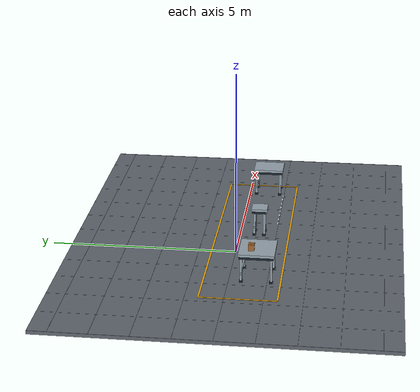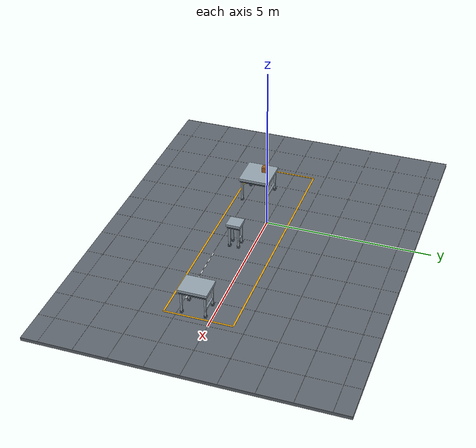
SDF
<sdf version="1.9">
 <world name="celda">
  <model name="suelo">
   <static>true</static>
   <link name="body">
    <visual name="slab">
     <pose>1 0 -.05 0 0 0</pose>
     <geometry><box><size>12 9 .10</size></box></geometry>
     <material>
      <ambient>.37 .40 .43 1</ambient>
      <diffuse>.37 .40 .43 1</diffuse>
      <specular>.25 .25 .25 1</specular>
     </material>
    </visual>
    <collision name="slab">
     <pose>1 0 -.05 0 0 0</pose>
     <geometry><box><size>12 9 .10</size></box></geometry>
    </collision>
   </link>
  </model>
  <model name="marcas_suelo">
   <static>true</static>
   <link name="body">
    <visual name="gx-5">
     <pose>-5 0 .001 0 0 0</pose>
     <geometry><box><size>.006 9 .002</size></box></geometry>
     <material>
      <ambient>.47 .49 .51 1</ambient>
      <diffuse>.47 .49 .51 1</diffuse>
      <specular>.25 .25 .25 1</specular>
     </material>
    </visual>
    <visual name="gx-4">
     <pose>-4 0 .001 0 0 0</pose>
     <geometry><box><size>.006 9 .002</size></box></geometry>
     <material>
      <ambient>.47 .49 .51 1</ambient>
      <diffuse>.47 .49 .51 1</diffuse>
      <specular>.25 .25 .25 1</specular>
     </material>
    </visual>
    <visual name="gx-3">
     <pose>-3 0 .001 0 0 0</pose>
     <geometry><box><size>.006 9 .002</size></box></geometry>
     <material>
      <ambient>.47 .49 .51 1</ambient>
      <diffuse>.47 .49 .51 1</diffuse>
      <specular>.25 .25 .25 1</specular>
     </material>
    </visual>
    <visual name="gx-2">
     <pose>-2 0 .001 0 0 0</pose>
     <geometry><box><size>.006 9 .002</size></box></geometry>
     <material>
      <ambient>.47 .49 .51 1</ambient>
      <diffuse>.47 .49 .51 1</diffuse>
      <specular>.25 .25 .25 1</specular>
     </material>
    </visual>
    <visual name="gx-1">
     <pose>-1 0 .001 0 0 0</pose>
     <geometry><box><size>.006 9 .002</size></box></geometry>
     <material>
      <ambient>.47 .49 .51 1</ambient>
      <diffuse>.47 .49 .51 1</diffuse>
      <specular>.25 .25 .25 1</specular>
     </material>
    </visual>
    <visual name="gx0">
     <pose>0 0 .001 0 0 0</pose>
     <geometry><box><size>.006 9 .002</size></box></geometry>
     <material>
      <ambient>.47 .49 .51 1</ambient>
      <diffuse>.47 .49 .51 1</diffuse>
      <specular>.25 .25 .25 1</specular>
     </material>
    </visual>
    <visual name="gx1">
     <pose>1 0 .001 0 0 0</pose>
     <geometry><box><size>.006 9 .002</size></box></geometry>
     <material>
      <ambient>.47 .49 .51 1</ambient>
      <diffuse>.47 .49 .51 1</diffuse>
      <specular>.25 .25 .25 1</specular>
     </material>
    </visual>
    <visual name="gx2">
     <pose>2 0 .001 0 0 0</pose>
     <geometry><box><size>.006 9 .002</size></box></geometry>
     <material>
      <ambient>.47 .49 .51 1</ambient>
      <diffuse>.47 .49 .51 1</diffuse>
      <specular>.25 .25 .25 1</specular>
     </material>
    </visual>
    <visual name="gx3">
     <pose>3 0 .001 0 0 0</pose>
     <geometry><box><size>.006 9 .002</size></box></geometry>
     <material>
      <ambient>.47 .49 .51 1</ambient>
      <diffuse>.47 .49 .51 1</diffuse>
      <specular>.25 .25 .25 1</specular>
     </material>
    </visual>
    <visual name="gx4">
     <pose>4 0 .001 0 0 0</pose>
     <geometry><box><size>.006 9 .002</size></box></geometry>
     <material>
      <ambient>.47 .49 .51 1</ambient>
      <diffuse>.47 .49 .51 1</diffuse>
      <specular>.25 .25 .25 1</specular>
     </material>
    </visual>
    <visual name="gx5">
     <pose>5 0 .001 0 0 0</pose>
     <geometry><box><size>.006 9 .002</size></box></geometry>
     <material>
      <ambient>.47 .49 .51 1</ambient>
      <diffuse>.47 .49 .51 1</diffuse>
      <specular>.25 .25 .25 1</specular>
     </material>
    </visual>
    <visual name="gx6">
     <pose>6 0 .001 0 0 0</pose>
     <geometry><box><size>.006 9 .002</size></box></geometry>
     <material>
      <ambient>.47 .49 .51 1</ambient>
      <diffuse>.47 .49 .51 1</diffuse>
      <specular>.25 .25 .25 1</specular>
     </material>
    </visual>
    <visual name="gx7">
     <pose>7 0 .001 0 0 0</pose>
     <geometry><box><size>.006 9 .002</size></box></geometry>
     <material>
      <ambient>.47 .49 .51 1</ambient>
      <diffuse>.47 .49 .51 1</diffuse>
      <specular>.25 .25 .25 1</specular>
     </material>
    </visual>
    <visual name="gy-4">
     <pose>1 -4 .001 0 0 0</pose>
     <geometry><box><size>12 .006 .002</size></box></geometry>
     <material>
      <ambient>.47 .49 .51 1</ambient>
      <diffuse>.47 .49 .51 1</diffuse>
      <specular>.25 .25 .25 1</specular>
     </material>
    </visual>
    <visual name="gy-3">
     <pose>1 -3 .001 0 0 0</pose>
     <geometry><box><size>12 .006 .002</size></box></geometry>
     <material>
      <ambient>.47 .49 .51 1</ambient>
      <diffuse>.47 .49 .51 1</diffuse>
      <specular>.25 .25 .25 1</specular>
     </material>
    </visual>
    <visual name="gy-2">
     <pose>1 -2 .001 0 0 0</pose>
     <geometry><box><size>12 .006 .002</size></box></geometry>
     <material>
      <ambient>.47 .49 .51 1</ambient>
      <diffuse>.47 .49 .51 1</diffuse>
      <specular>.25 .25 .25 1</specular>
     </material>
    </visual>
    <visual name="gy-1">
     <pose>1 -1 .001 0 0 0</pose>
     <geometry><box><size>12 .006 .002</size></box></geometry>
     <material>
      <ambient>.47 .49 .51 1</ambient>
      <diffuse>.47 .49 .51 1</diffuse>
      <specular>.25 .25 .25 1</specular>
     </material>
    </visual>
    <visual name="gy0">
     <pose>1 0 .001 0 0 0</pose>
     <geometry><box><size>12 .006 .002</size></box></geometry>
     <material>
      <ambient>.47 .49 .51 1</ambient>
      <diffuse>.47 .49 .51 1</diffuse>
      <specular>.25 .25 .25 1</specular>
     </material>
    </visual>
    <visual name="gy1">
     <pose>1 1 .001 0 0 0</pose>
     <geometry><box><size>12 .006 .002</size></box></geometry>
     <material>
      <ambient>.47 .49 .51 1</ambient>
      <diffuse>.47 .49 .51 1</diffuse>
      <specular>.25 .25 .25 1</specular>
     </material>
    </visual>
    <visual name="gy2">
     <pose>1 2 .001 0 0 0</pose>
     <geometry><box><size>12 .006 .002</size></box></geometry>
     <material>
      <ambient>.47 .49 .51 1</ambient>
      <diffuse>.47 .49 .51 1</diffuse>
      <specular>.25 .25 .25 1</specular>
     </material>
    </visual>
    <visual name="gy3">
     <pose>1 3 .001 0 0 0</pose>
     <geometry><box><size>12 .006 .002</size></box></geometry>
     <material>
      <ambient>.47 .49 .51 1</ambient>
      <diffuse>.47 .49 .51 1</diffuse>
      <specular>.25 .25 .25 1</specular>
     </material>
    </visual>
    <visual name="gy4">
     <pose>1 4 .001 0 0 0</pose>
     <geometry><box><size>12 .006 .002</size></box></geometry>
     <material>
      <ambient>.47 .49 .51 1</ambient>
      <diffuse>.47 .49 .51 1</diffuse>
      <specular>.25 .25 .25 1</specular>
     </material>
    </visual>
    <visual name="edge-1.35">
     <pose>1 -1.35 .006 0 0 0</pose>
     <geometry><box><size>7.6 .045 .008</size></box></geometry>
     <material>
      <ambient>.95 .67 .04 1</ambient>
      <diffuse>.95 .67 .04 1</diffuse>
      <specular>.25 .25 .25 1</specular>
     </material>
    </visual>
    <visual name="edge0.65">
     <pose>1 0.65 .006 0 0 0</pose>
     <geometry><box><size>7.6 .045 .008</size></box></geometry>
     <material>
      <ambient>.95 .67 .04 1</ambient>
      <diffuse>.95 .67 .04 1</diffuse>
      <specular>.25 .25 .25 1</specular>
     </material>
    </visual>
    <visual name="end-2.8">
     <pose>-2.8 -.35 .006 0 0 0</pose>
     <geometry><box><size>.045 2 .008</size></box></geometry>
     <material>
      <ambient>.95 .67 .04 1</ambient>
      <diffuse>.95 .67 .04 1</diffuse>
      <specular>.25 .25 .25 1</specular>
     </material>
    </visual>
    <visual name="end4.8">
     <pose>4.8 -.35 .006 0 0 0</pose>
     <geometry><box><size>.045 2 .008</size></box></geometry>
     <material>
      <ambient>.95 .67 .04 1</ambient>
      <diffuse>.95 .67 .04 1</diffuse>
      <specular>.25 .25 .25 1</specular>
     </material>
    </visual>
    <visual name="route0">
     <pose>2.0 -.98 .009 0 0 0</pose>
     <geometry><box><size>.15 .035 .008</size></box></geometry>
     <material>
      <ambient>.88 .9 .91 1</ambient>
      <diffuse>.88 .9 .91 1</diffuse>
      <specular>.25 .25 .25 1</specular>
     </material>
    </visual>
    <visual name="route1">
     <pose>2.29 -.98 .009 0 0 0</pose>
     <geometry><box><size>.15 .035 .008</size></box></geometry>
     <material>
      <ambient>.88 .9 .91 1</ambient>
      <diffuse>.88 .9 .91 1</diffuse>
      <specular>.25 .25 .25 1</specular>
     </material>
    </visual>
    <visual name="route2">
     <pose>2.58 -.98 .009 0 0 0</pose>
     <geometry><box><size>.15 .035 .008</size></box></geometry>
     <material>
      <ambient>.88 .9 .91 1</ambient>
      <diffuse>.88 .9 .91 1</diffuse>
      <specular>.25 .25 .25 1</specular>
     </material>
    </visual>
    <visual name="route3">
     <pose>2.87 -.98 .009 0 0 0</pose>
     <geometry><box><size>.15 .035 .008</size></box></geometry>
     <material>
      <ambient>.88 .9 .91 1</ambient>
      <diffuse>.88 .9 .91 1</diffuse>
      <specular>.25 .25 .25 1</specular>
     </material>
    </visual>
    <visual name="route4">
     <pose>3.16 -.98 .009 0 0 0</pose>
     <geometry><box><size>.15 .035 .008</size></box></geometry>
     <material>
      <ambient>.88 .9 .91 1</ambient>
      <diffuse>.88 .9 .91 1</diffuse>
      <specular>.25 .25 .25 1</specular>
     </material>
    </visual>
    <visual name="route5">
     <pose>3.45 -.98 .009 0 0 0</pose>
     <geometry><box><size>.15 .035 .008</size></box></geometry>
     <material>
      <ambient>.88 .9 .91 1</ambient>
      <diffuse>.88 .9 .91 1</diffuse>
      <specular>.25 .25 .25 1</specular>
     </material>
    </visual>
    <visual name="route6">
     <pose>3.7399999999999998 -.98 .009 0 0 0</pose>
     <geometry><box><size>.15 .035 .008</size></box></geometry>
     <material>
      <ambient>.88 .9 .91 1</ambient>
      <diffuse>.88 .9 .91 1</diffuse>
      <specular>.25 .25 .25 1</specular>
     </material>
    </visual>
    <visual name="route7">
     <pose>4.029999999999999 -.98 .009 0 0 0</pose>
     <geometry><box><size>.15 .035 .008</size></box></geometry>
     <material>
      <ambient>.88 .9 .91 1</ambient>
      <diffuse>.88 .9 .91 1</diffuse>
      <specular>.25 .25 .25 1</specular>
     </material>
    </visual>
   </link>
  </model>
  <model name="mesa_UR3">
   <static>true</static>
   <link name="body">
    <visual name="top">
     <pose>-1.38 -0.72 0.765 0 0 0</pose>
     <geometry><box><size>1.0 0.94 .07</size></box></geometry>
     <material>
      <ambient>.58 .64 .68 1</ambient>
      <diffuse>.58 .64 .68 1</diffuse>
      <specular>.25 .25 .25 1</specular>
     </material>
    </visual>
    <collision name="top">
     <pose>-1.38 -0.72 0.765 0 0 0</pose>
     <geometry><box><size>1.0 0.94 .07</size></box></geometry>
    </collision>
    <visual name="under">
     <pose>-1.38 -0.72 0.7000000000000001 0 0 0</pose>
     <geometry><box><size>0.96 0.8999999999999999 .08</size></box></geometry>
     <material>
      <ambient>.09 .13 .17 1</ambient>
      <diffuse>.09 .13 .17 1</diffuse>
      <specular>.25 .25 .25 1</specular>
     </material>
    </visual>
    <visual name="leg0">
     <pose>-1.7999999999999998 -1.1099999999999999 0.34 0 0 0</pose>
     <geometry><box><size>.055 .055 0.68</size></box></geometry>
     <material>
      <ambient>.58 .64 .68 1</ambient>
      <diffuse>.58 .64 .68 1</diffuse>
      <specular>.25 .25 .25 1</specular>
     </material>
    </visual>
    <collision name="leg0">
     <pose>-1.7999999999999998 -1.1099999999999999 0.34 0 0 0</pose>
     <geometry><box><size>.055 .055 0.68</size></box></geometry>
    </collision>
    <visual name="foot0">
     <pose>-1.7999999999999998 -1.1099999999999999 .025 0 0 0</pose>
     <geometry><box><size>.09 .09 .05</size></box></geometry>
     <material>
      <ambient>.09 .13 .17 1</ambient>
      <diffuse>.09 .13 .17 1</diffuse>
      <specular>.25 .25 .25 1</specular>
     </material>
    </visual>
    <visual name="leg1">
     <pose>-1.7999999999999998 -0.33 0.34 0 0 0</pose>
     <geometry><box><size>.055 .055 0.68</size></box></geometry>
     <material>
      <ambient>.58 .64 .68 1</ambient>
      <diffuse>.58 .64 .68 1</diffuse>
      <specular>.25 .25 .25 1</specular>
     </material>
    </visual>
    <collision name="leg1">
     <pose>-1.7999999999999998 -0.33 0.34 0 0 0</pose>
     <geometry><box><size>.055 .055 0.68</size></box></geometry>
    </collision>
    <visual name="foot1">
     <pose>-1.7999999999999998 -0.33 .025 0 0 0</pose>
     <geometry><box><size>.09 .09 .05</size></box></geometry>
     <material>
      <ambient>.09 .13 .17 1</ambient>
      <diffuse>.09 .13 .17 1</diffuse>
      <specular>.25 .25 .25 1</specular>
     </material>
    </visual>
    <visual name="leg2">
     <pose>-0.96 -1.1099999999999999 0.34 0 0 0</pose>
     <geometry><box><size>.055 .055 0.68</size></box></geometry>
     <material>
      <ambient>.58 .64 .68 1</ambient>
      <diffuse>.58 .64 .68 1</diffuse>
      <specular>.25 .25 .25 1</specular>
     </material>
    </visual>
    <collision name="leg2">
     <pose>-0.96 -1.1099999999999999 0.34 0 0 0</pose>
     <geometry><box><size>.055 .055 0.68</size></box></geometry>
    </collision>
    <visual name="foot2">
     <pose>-0.96 -1.1099999999999999 .025 0 0 0</pose>
     <geometry><box><size>.09 .09 .05</size></box></geometry>
     <material>
      <ambient>.09 .13 .17 1</ambient>
      <diffuse>.09 .13 .17 1</diffuse>
      <specular>.25 .25 .25 1</specular>
     </material>
    </visual>
    <visual name="leg3">
     <pose>-0.96 -0.33 0.34 0 0 0</pose>
     <geometry><box><size>.055 .055 0.68</size></box></geometry>
     <material>
      <ambient>.58 .64 .68 1</ambient>
      <diffuse>.58 .64 .68 1</diffuse>
      <specular>.25 .25 .25 1</specular>
     </material>
    </visual>
    <collision name="leg3">
     <pose>-0.96 -0.33 0.34 0 0 0</pose>
     <geometry><box><size>.055 .055 0.68</size></box></geometry>
    </collision>
    <visual name="foot3">
     <pose>-0.96 -0.33 .025 0 0 0</pose>
     <geometry><box><size>.09 .09 .05</size></box></geometry>
     <material>
      <ambient>.09 .13 .17 1</ambient>
      <diffuse>.09 .13 .17 1</diffuse>
      <specular>.25 .25 .25 1</specular>
     </material>
    </visual>
    <visual name="brace">
     <pose>-1.38 -0.33 .24 0 0 0</pose>
     <geometry><box><size>0.9 .04 .06</size></box></geometry>
     <material>
      <ambient>.58 .64 .68 1</ambient>
      <diffuse>.58 .64 .68 1</diffuse>
      <specular>.25 .25 .25 1</specular>
     </material>
    </visual>
   </link>
  </model>
  <model name="pedestal_UR5">
   <static>true</static>
   <link name="body">
    <visual name="top">
     <pose>1.3 -0.53 0.765 0 0 0</pose>
     <geometry><box><size>0.43 0.43 .07</size></box></geometry>
     <material>
      <ambient>.58 .64 .68 1</ambient>
      <diffuse>.58 .64 .68 1</diffuse>
      <specular>.25 .25 .25 1</specular>
     </material>
    </visual>
    <collision name="top">
     <pose>1.3 -0.53 0.765 0 0 0</pose>
     <geometry><box><size>0.43 0.43 .07</size></box></geometry>
    </collision>
    <visual name="under">
     <pose>1.3 -0.53 0.7000000000000001 0 0 0</pose>
     <geometry><box><size>0.39 0.39 .08</size></box></geometry>
     <material>
      <ambient>.09 .13 .17 1</ambient>
      <diffuse>.09 .13 .17 1</diffuse>
      <specular>.25 .25 .25 1</specular>
     </material>
    </visual>
    <visual name="leg0">
     <pose>1.165 -0.665 0.34 0 0 0</pose>
     <geometry><box><size>.055 .055 0.68</size></box></geometry>
     <material>
      <ambient>.58 .64 .68 1</ambient>
      <diffuse>.58 .64 .68 1</diffuse>
      <specular>.25 .25 .25 1</specular>
     </material>
    </visual>
    <collision name="leg0">
     <pose>1.165 -0.665 0.34 0 0 0</pose>
     <geometry><box><size>.055 .055 0.68</size></box></geometry>
    </collision>
    <visual name="foot0">
     <pose>1.165 -0.665 .025 0 0 0</pose>
     <geometry><box><size>.09 .09 .05</size></box></geometry>
     <material>
      <ambient>.09 .13 .17 1</ambient>
      <diffuse>.09 .13 .17 1</diffuse>
      <specular>.25 .25 .25 1</specular>
     </material>
    </visual>
    <visual name="leg1">
     <pose>1.165 -0.395 0.34 0 0 0</pose>
     <geometry><box><size>.055 .055 0.68</size></box></geometry>
     <material>
      <ambient>.58 .64 .68 1</ambient>
      <diffuse>.58 .64 .68 1</diffuse>
      <specular>.25 .25 .25 1</specular>
     </material>
    </visual>
    <collision name="leg1">
     <pose>1.165 -0.395 0.34 0 0 0</pose>
     <geometry><box><size>.055 .055 0.68</size></box></geometry>
    </collision>
    <visual name="foot1">
     <pose>1.165 -0.395 .025 0 0 0</pose>
     <geometry><box><size>.09 .09 .05</size></box></geometry>
     <material>
      <ambient>.09 .13 .17 1</ambient>
      <diffuse>.09 .13 .17 1</diffuse>
      <specular>.25 .25 .25 1</specular>
     </material>
    </visual>
    <visual name="leg2">
     <pose>1.435 -0.665 0.34 0 0 0</pose>
     <geometry><box><size>.055 .055 0.68</size></box></geometry>
     <material>
      <ambient>.58 .64 .68 1</ambient>
      <diffuse>.58 .64 .68 1</diffuse>
      <specular>.25 .25 .25 1</specular>
     </material>
    </visual>
    <collision name="leg2">
     <pose>1.435 -0.665 0.34 0 0 0</pose>
     <geometry><box><size>.055 .055 0.68</size></box></geometry>
    </collision>
    <visual name="foot2">
     <pose>1.435 -0.665 .025 0 0 0</pose>
     <geometry><box><size>.09 .09 .05</size></box></geometry>
     <material>
      <ambient>.09 .13 .17 1</ambient>
      <diffuse>.09 .13 .17 1</diffuse>
      <specular>.25 .25 .25 1</specular>
     </material>
    </visual>
    <visual name="leg3">
     <pose>1.435 -0.395 0.34 0 0 0</pose>
     <geometry><box><size>.055 .055 0.68</size></box></geometry>
     <material>
      <ambient>.58 .64 .68 1</ambient>
      <diffuse>.58 .64 .68 1</diffuse>
      <specular>.25 .25 .25 1</specular>
     </material>
    </visual>
    <collision name="leg3">
     <pose>1.435 -0.395 0.34 0 0 0</pose>
     <geometry><box><size>.055 .055 0.68</size></box></geometry>
    </collision>
    <visual name="foot3">
     <pose>1.435 -0.395 .025 0 0 0</pose>
     <geometry><box><size>.09 .09 .05</size></box></geometry>
     <material>
      <ambient>.09 .13 .17 1</ambient>
      <diffuse>.09 .13 .17 1</diffuse>
      <specular>.25 .25 .25 1</specular>
     </material>
    </visual>
    <visual name="brace">
     <pose>1.3 -0.3950000000000001 .24 0 0 0</pose>
     <geometry><box><size>0.32999999999999996 .04 .06</size></box></geometry>
     <material>
      <ambient>.58 .64 .68 1</ambient>
      <diffuse>.58 .64 .68 1</diffuse>
      <specular>.25 .25 .25 1</specular>
     </material>
    </visual>
   </link>
  </model>
  <model name="mesa_entrega">
   <static>true</static>
   <link name="body">
    <visual name="top">
     <pose>4.4 -0.53 0.765 0 0 0</pose>
     <geometry><box><size>0.7 0.85 .07</size></box></geometry>
     <material>
      <ambient>.58 .64 .68 1</ambient>
      <diffuse>.58 .64 .68 1</diffuse>
      <specular>.25 .25 .25 1</specular>
     </material>
    </visual>
    <collision name="top">
     <pose>4.4 -0.53 0.765 0 0 0</pose>
     <geometry><box><size>0.7 0.85 .07</size></box></geometry>
    </collision>
    <visual name="under">
     <pose>4.4 -0.53 0.7000000000000001 0 0 0</pose>
     <geometry><box><size>0.6599999999999999 0.8099999999999999 .08</size></box></geometry>
     <material>
      <ambient>.09 .13 .17 1</ambient>
      <diffuse>.09 .13 .17 1</diffuse>
      <specular>.25 .25 .25 1</specular>
     </material>
    </visual>
    <visual name="leg0">
     <pose>4.130000000000001 -0.875 0.34 0 0 0</pose>
     <geometry><box><size>.055 .055 0.68</size></box></geometry>
     <material>
      <ambient>.58 .64 .68 1</ambient>
      <diffuse>.58 .64 .68 1</diffuse>
      <specular>.25 .25 .25 1</specular>
     </material>
    </visual>
    <collision name="leg0">
     <pose>4.130000000000001 -0.875 0.34 0 0 0</pose>
     <geometry><box><size>.055 .055 0.68</size></box></geometry>
    </collision>
    <visual name="foot0">
     <pose>4.130000000000001 -0.875 .025 0 0 0</pose>
     <geometry><box><size>.09 .09 .05</size></box></geometry>
     <material>
      <ambient>.09 .13 .17 1</ambient>
      <diffuse>.09 .13 .17 1</diffuse>
      <specular>.25 .25 .25 1</specular>
     </material>
    </visual>
    <visual name="leg1">
     <pose>4.130000000000001 -0.18500000000000005 0.34 0 0 0</pose>
     <geometry><box><size>.055 .055 0.68</size></box></geometry>
     <material>
      <ambient>.58 .64 .68 1</ambient>
      <diffuse>.58 .64 .68 1</diffuse>
      <specular>.25 .25 .25 1</specular>
     </material>
    </visual>
    <collision name="leg1">
     <pose>4.130000000000001 -0.18500000000000005 0.34 0 0 0</pose>
     <geometry><box><size>.055 .055 0.68</size></box></geometry>
    </collision>
    <visual name="foot1">
     <pose>4.130000000000001 -0.18500000000000005 .025 0 0 0</pose>
     <geometry><box><size>.09 .09 .05</size></box></geometry>
     <material>
      <ambient>.09 .13 .17 1</ambient>
      <diffuse>.09 .13 .17 1</diffuse>
      <specular>.25 .25 .25 1</specular>
     </material>
    </visual>
    <visual name="leg2">
     <pose>4.67 -0.875 0.34 0 0 0</pose>
     <geometry><box><size>.055 .055 0.68</size></box></geometry>
     <material>
      <ambient>.58 .64 .68 1</ambient>
      <diffuse>.58 .64 .68 1</diffuse>
      <specular>.25 .25 .25 1</specular>
     </material>
    </visual>
    <collision name="leg2">
     <pose>4.67 -0.875 0.34 0 0 0</pose>
     <geometry><box><size>.055 .055 0.68</size></box></geometry>
    </collision>
    <visual name="foot2">
     <pose>4.67 -0.875 .025 0 0 0</pose>
     <geometry><box><size>.09 .09 .05</size></box></geometry>
     <material>
      <ambient>.09 .13 .17 1</ambient>
      <diffuse>.09 .13 .17 1</diffuse>
      <specular>.25 .25 .25 1</specular>
     </material>
    </visual>
    <visual name="leg3">
     <pose>4.67 -0.18500000000000005 0.34 0 0 0</pose>
     <geometry><box><size>.055 .055 0.68</size></box></geometry>
     <material>
      <ambient>.58 .64 .68 1</ambient>
      <diffuse>.58 .64 .68 1</diffuse>
      <specular>.25 .25 .25 1</specular>
     </material>
    </visual>
    <collision name="leg3">
     <pose>4.67 -0.18500000000000005 0.34 0 0 0</pose>
     <geometry><box><size>.055 .055 0.68</size></box></geometry>
    </collision>
    <visual name="foot3">
     <pose>4.67 -0.18500000000000005 .025 0 0 0</pose>
     <geometry><box><size>.09 .09 .05</size></box></geometry>
     <material>
      <ambient>.09 .13 .17 1</ambient>
      <diffuse>.09 .13 .17 1</diffuse>
      <specular>.25 .25 .25 1</specular>
     </material>
    </visual>
    <visual name="brace">
     <pose>4.4 -0.18500000000000005 .24 0 0 0</pose>
     <geometry><box><size>0.6 .04 .06</size></box></geometry>
     <material>
      <ambient>.58 .64 .68 1</ambient>
      <diffuse>.58 .64 .68 1</diffuse>
      <specular>.25 .25 .25 1</specular>
     </material>
    </visual>
   </link>
  </model>
  <model name="caja">
   <pose>-1.53 -.57 .882 0 0 0</pose>
   <link name="body">
    <inertial><mass>.25</mass><inertia><ixx>.00107</ixx><iyy>.0012</iyy><izz>.0012</izz></inertia></inertial>
    <visual name="carton">
     <geometry><box><size>.18 .16 .16</size></box></geometry>
     <material>
      <ambient>.64 .39 .17 1</ambient>
      <diffuse>.64 .39 .17 1</diffuse>
      <specular>.25 .25 .25 1</specular>
     </material>
    </visual>
    <collision name="carton"><geometry><box><size>.18 .16 .16</size></box></geometry></collision>
    <visual name="tape">
     <pose>0 0 .0808 0 0 0</pose>
     <geometry><box><size>.045 .161 .002</size></box></geometry>
     <material>
      <ambient>.82 .65 .38 1</ambient>
      <diffuse>.82 .65 .38 1</diffuse>
      <specular>.25 .25 .25 1</specular>
     </material>
    </visual>
    <visual name="label">
     <pose>0 -.0808 .015 0 0 0</pose>
     <geometry><box><size>.10 .002 .065</size></box></geometry>
     <material>
      <ambient>.95 .95 .91 1</ambient>
      <diffuse>.95 .95 .91 1</diffuse>
      <specular>.25 .25 .25 1</specular>
     </material>
    </visual>
    <visual name="barcode0">
     <pose>-0.04 -.082 .017 0 0 0</pose>
     <geometry><box><size>0.003 .001 .04</size></box></geometry>
     <material>
      <ambient>.07 .08 .08 1</ambient>
      <diffuse>.07 .08 .08 1</diffuse>
      <specular>.25 .25 .25 1</specular>
     </material>
    </visual>
    <visual name="barcode1">
     <pose>-0.034 -.082 .017 0 0 0</pose>
     <geometry><box><size>0.002 .001 .04</size></box></geometry>
     <material>
      <ambient>.07 .08 .08 1</ambient>
      <diffuse>.07 .08 .08 1</diffuse>
      <specular>.25 .25 .25 1</specular>
     </material>
    </visual>
    <visual name="barcode2">
     <pose>-0.028 -.082 .017 0 0 0</pose>
     <geometry><box><size>0.002 .001 .04</size></box></geometry>
     <material>
      <ambient>.07 .08 .08 1</ambient>
      <diffuse>.07 .08 .08 1</diffuse>
      <specular>.25 .25 .25 1</specular>
     </material>
    </visual>
    <visual name="barcode3">
     <pose>-0.022 -.082 .017 0 0 0</pose>
     <geometry><box><size>0.003 .001 .04</size></box></geometry>
     <material>
      <ambient>.07 .08 .08 1</ambient>
      <diffuse>.07 .08 .08 1</diffuse>
      <specular>.25 .25 .25 1</specular>
     </material>
    </visual>
    <visual name="barcode4">
     <pose>-0.016 -.082 .017 0 0 0</pose>
     <geometry><box><size>0.002 .001 .04</size></box></geometry>
     <material>
      <ambient>.07 .08 .08 1</ambient>
      <diffuse>.07 .08 .08 1</diffuse>
      <specular>.25 .25 .25 1</specular>
     </material>
    </visual>
    <visual name="barcode5">
     <pose>-0.010000000000000002 -.082 .017 0 0 0</pose>
     <geometry><box><size>0.002 .001 .04</size></box></geometry>
     <material>
      <ambient>.07 .08 .08 1</ambient>
      <diffuse>.07 .08 .08 1</diffuse>
      <specular>.25 .25 .25 1</specular>
     </material>
    </visual>
    <visual name="barcode6">
     <pose>-0.003999999999999997 -.082 .017 0 0 0</pose>
     <geometry><box><size>0.003 .001 .04</size></box></geometry>
     <material>
      <ambient>.07 .08 .08 1</ambient>
      <diffuse>.07 .08 .08 1</diffuse>
      <specular>.25 .25 .25 1</specular>
     </material>
    </visual>
   </link>
  </model>
  <model name="evidence_camera">
   <static>true</static>
   <pose>4 -6 4 0 .47 2.05</pose>
   <link name="camera">
    <sensor name="overview" type="camera">
     <always_on>true</always_on>
     <update_rate>1</update_rate>
     <topic>/celda/camera</topic>
     <camera>
      <horizontal_fov>1.15</horizontal_fov>
      <image><width>1000</width><height>625</height><format>R8G8B8</format></image>
      <clip><near>.1</near><far>100</far></clip>
     </camera>
    </sensor>
   </link>
  </model>
 </world>
</sdf>
